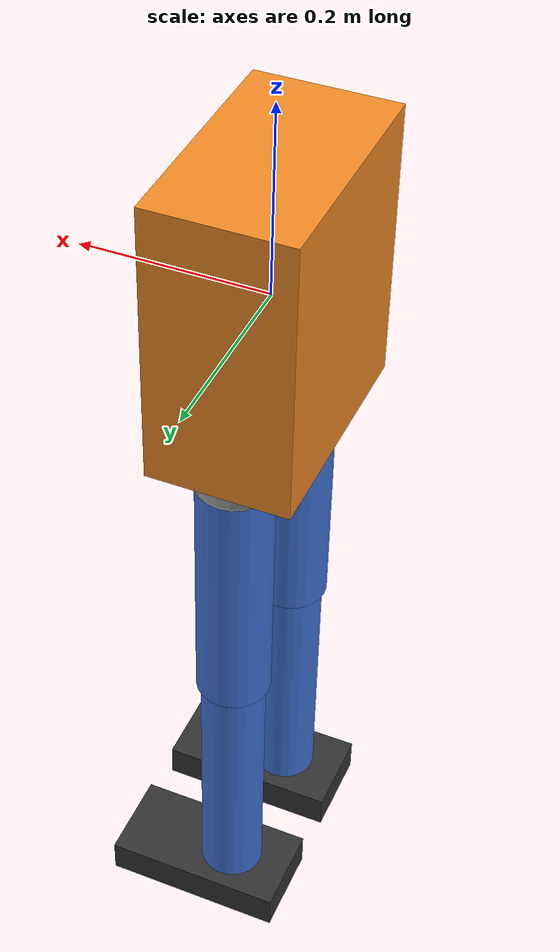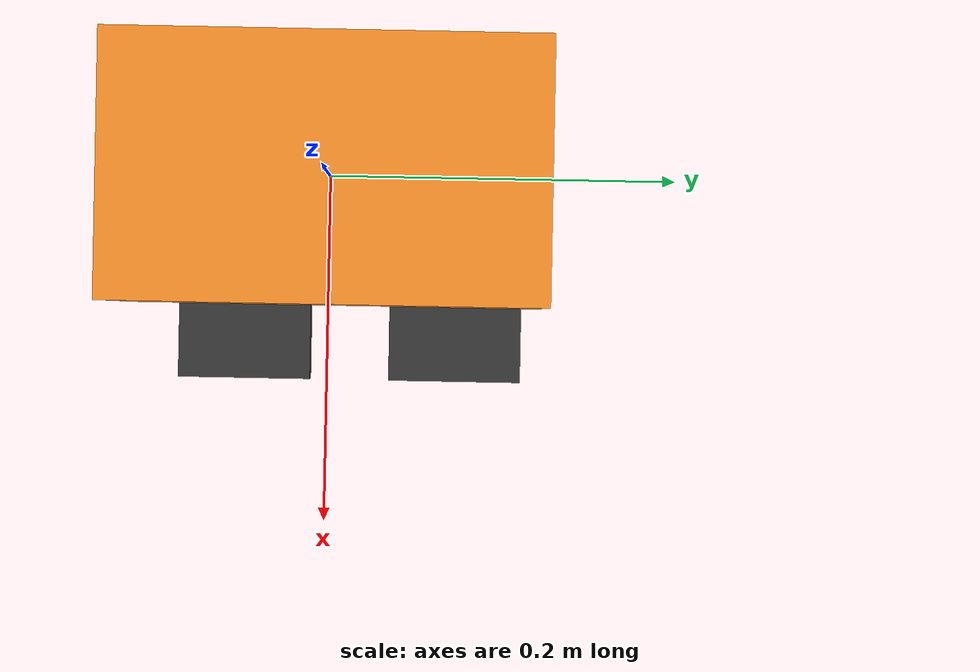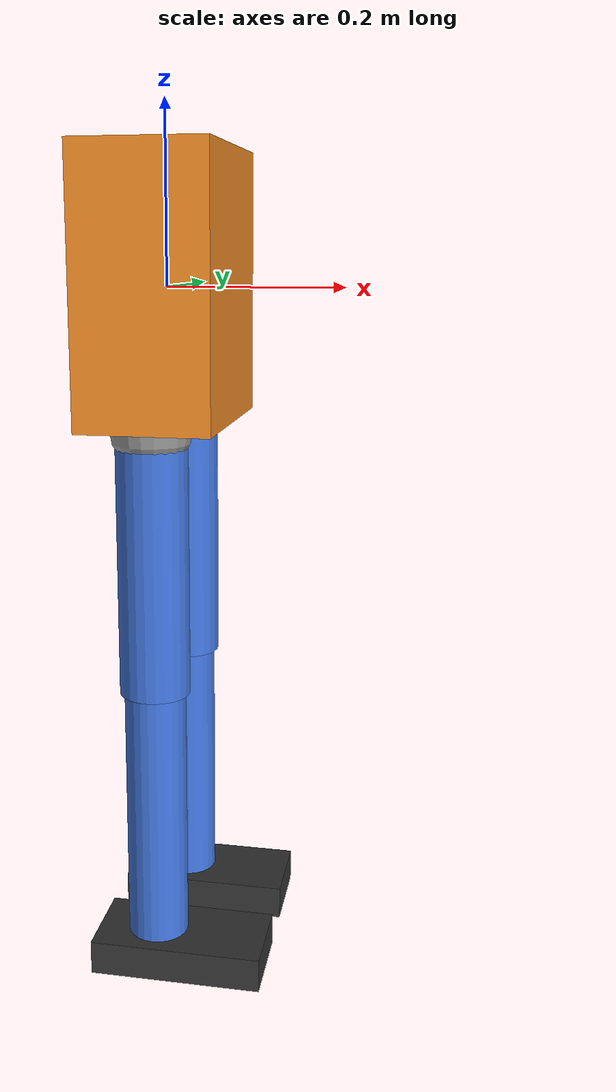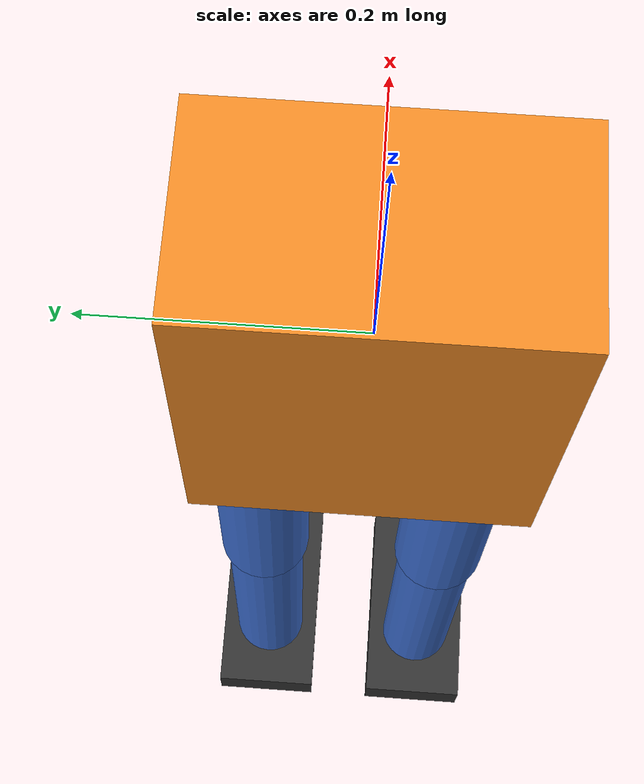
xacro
<?xml version="1.0"?>
<robot name="biped" xmlns:xacro="http://www.ros.org/wiki/xacro">

  <xacro:arg name="fixed" default="false"/>
  <xacro:arg name="sim" default="false"/>
  <xacro:arg name="controllers" default=""/>

  <xacro:property name="torso_x" value="0.15"/>
  <xacro:property name="torso_y" value="0.25"/>
  <xacro:property name="torso_z" value="0.30"/>

  <xacro:include filename="inertia.xacro"/>
  <xacro:include filename="leg.xacro"/>

  <material name="torso_orange"><color rgba="0.95 0.55 0.15 1"/></material>
  <material name="limb_blue"><color rgba="0.25 0.45 0.85 1"/></material>
  <material name="joint_grey"><color rgba="0.6 0.6 0.6 1"/></material>
  <material name="foot_dark"><color rgba="0.2 0.2 0.2 1"/></material>

  <xacro:if value="$(arg fixed)">
    <link name="world"/>
    <joint name="world_to_torso" type="fixed">
      <parent link="world"/>
      <child link="torso"/>
      <origin xyz="0 0 1.0"/>
    </joint>
  </xacro:if>

  <link name="torso">
    <visual>
      <geometry><box size="${torso_x} ${torso_y} ${torso_z}"/></geometry>
      <material name="torso_orange"/>
    </visual>
    <collision>
      <geometry><box size="${torso_x} ${torso_y} ${torso_z}"/></geometry>
    </collision>
    <xacro:box_inertia m="8.0" x="${torso_x}" y="${torso_y}" z="${torso_z}"><origin xyz="0 0 0"/></xacro:box_inertia>
  </link>

  <xacro:leg side="left" reflect="1"/>
  <xacro:leg side="right" reflect="-1"/>

  <xacro:if value="$(arg sim)">
    <xacro:include filename="biped.ros2_control.xacro"/>
    <xacro:biped_ros2_control controllers="$(arg controllers)"/>
  </xacro:if>

</robot>

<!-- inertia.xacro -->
<!-- Inertial blocks for solid shapes (formulas: Wikipedia, "List of moments of inertia"). -->
<robot xmlns:xacro="http://www.ros.org/wiki/xacro">

  <xacro:macro name="box_inertia" params="m x y z *origin">
    <inertial>
      <xacro:insert_block name="origin"/>
      <mass value="${m}"/>
      <inertia ixx="${m * (y*y + z*z) / 12}" ixy="0" ixz="0"
               iyy="${m * (x*x + z*z) / 12}" iyz="0"
               izz="${m * (x*x + y*y) / 12}"/>
    </inertial>
  </xacro:macro>

  <!-- Cylinder along its local z axis. -->
  <xacro:macro name="cylinder_inertia" params="m r h *origin">
    <inertial>
      <xacro:insert_block name="origin"/>
      <mass value="${m}"/>
      <inertia ixx="${m * (3*r*r + h*h) / 12}" ixy="0" ixz="0"
               iyy="${m * (3*r*r + h*h) / 12}" iyz="0"
               izz="${m * r*r / 2}"/>
    </inertial>
  </xacro:macro>

</robot>

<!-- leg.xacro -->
<!-- One leg: hip roll, hip pitch, knee and ankle pitch. Instantiated twice, with side = left / right. -->
<robot xmlns:xacro="http://www.ros.org/wiki/xacro">

  <xacro:property name="hip_y" value="0.08"/>     <!-- lateral offset of each hip from the torso centre -->
  <xacro:property name="thigh_len" value="0.30"/>
  <xacro:property name="shin_len" value="0.30"/>
  <xacro:property name="foot_x" value="0.20"/>
  <xacro:property name="foot_y" value="0.10"/>
  <xacro:property name="foot_z" value="0.04"/>
  <xacro:property name="effort" value="100"/>
  <xacro:property name="velocity" value="10"/>

  <xacro:macro name="leg" params="side reflect">

    <joint name="${side}_hip_roll" type="revolute">
      <parent link="torso"/>
      <child link="${side}_hip"/>
      <origin xyz="0 ${reflect * hip_y} ${-torso_z / 2}"/>
      <axis xyz="1 0 0"/>
      <limit lower="-0.5" upper="0.5" effort="${effort}" velocity="${velocity}"/>
      <dynamics damping="0.5"/>
    </joint>

    <link name="${side}_hip">
      <visual>
        <geometry><sphere radius="0.045"/></geometry>
        <material name="joint_grey"/>
      </visual>
      <xacro:box_inertia m="0.3" x="0.06" y="0.06" z="0.06"><origin xyz="0 0 0"/></xacro:box_inertia>
    </link>

    <joint name="${side}_hip_pitch" type="revolute">
      <parent link="${side}_hip"/>
      <child link="${side}_thigh"/>
      <origin xyz="0 0 0"/>
      <axis xyz="0 1 0"/>
      <limit lower="-1.5" upper="1.0" effort="${effort}" velocity="${velocity}"/>
      <dynamics damping="0.5"/>
    </joint>

    <link name="${side}_thigh">
      <visual>
        <origin xyz="0 0 ${-thigh_len / 2}"/>
        <geometry><cylinder radius="0.04" length="${thigh_len}"/></geometry>
        <material name="limb_blue"/>
      </visual>
      <collision>
        <origin xyz="0 0 ${-thigh_len / 2}"/>
        <geometry><cylinder radius="0.04" length="${thigh_len}"/></geometry>
      </collision>
      <xacro:cylinder_inertia m="1.5" r="0.04" h="${thigh_len}"><origin xyz="0 0 ${-thigh_len / 2}"/></xacro:cylinder_inertia>
    </link>

    <joint name="${side}_knee" type="revolute">
      <parent link="${side}_thigh"/>
      <child link="${side}_shin"/>
      <origin xyz="0 0 ${-thigh_len}"/>
      <axis xyz="0 1 0"/>
      <limit lower="0.0" upper="2.0" effort="${effort}" velocity="${velocity}"/>
      <dynamics damping="0.5"/>
    </joint>

    <link name="${side}_shin">
      <visual>
        <origin xyz="0 0 ${-shin_len / 2}"/>
        <geometry><cylinder radius="0.035" length="${shin_len}"/></geometry>
        <material name="limb_blue"/>
      </visual>
      <collision>
        <origin xyz="0 0 ${-shin_len / 2}"/>
        <geometry><cylinder radius="0.035" length="${shin_len}"/></geometry>
      </collision>
      <xacro:cylinder_inertia m="1.0" r="0.035" h="${shin_len}"><origin xyz="0 0 ${-shin_len / 2}"/></xacro:cylinder_inertia>
    </link>

    <joint name="${side}_ankle_pitch" type="revolute">
      <parent link="${side}_shin"/>
      <child link="${side}_foot"/>
      <origin xyz="0 0 ${-shin_len}"/>
      <axis xyz="0 1 0"/>
      <limit lower="-1.0" upper="1.0" effort="${effort}" velocity="${velocity}"/>
      <dynamics damping="0.5"/>
    </joint>

    <link name="${side}_foot">
      <visual>
        <origin xyz="0.03 0 ${-foot_z / 2}"/>
        <geometry><box size="${foot_x} ${foot_y} ${foot_z}"/></geometry>
        <material name="foot_dark"/>
      </visual>
      <collision>
        <origin xyz="0.03 0 ${-foot_z / 2}"/>
        <geometry><box size="${foot_x} ${foot_y} ${foot_z}"/></geometry>
      </collision>
      <xacro:box_inertia m="0.5" x="${foot_x}" y="${foot_y}" z="${foot_z}"><origin xyz="0.03 0 ${-foot_z / 2}"/></xacro:box_inertia>
    </link>

    <gazebo reference="${side}_foot">
      <mu1>1.0</mu1>
      <mu2>1.0</mu2>
    </gazebo>

  </xacro:macro>

</robot>
